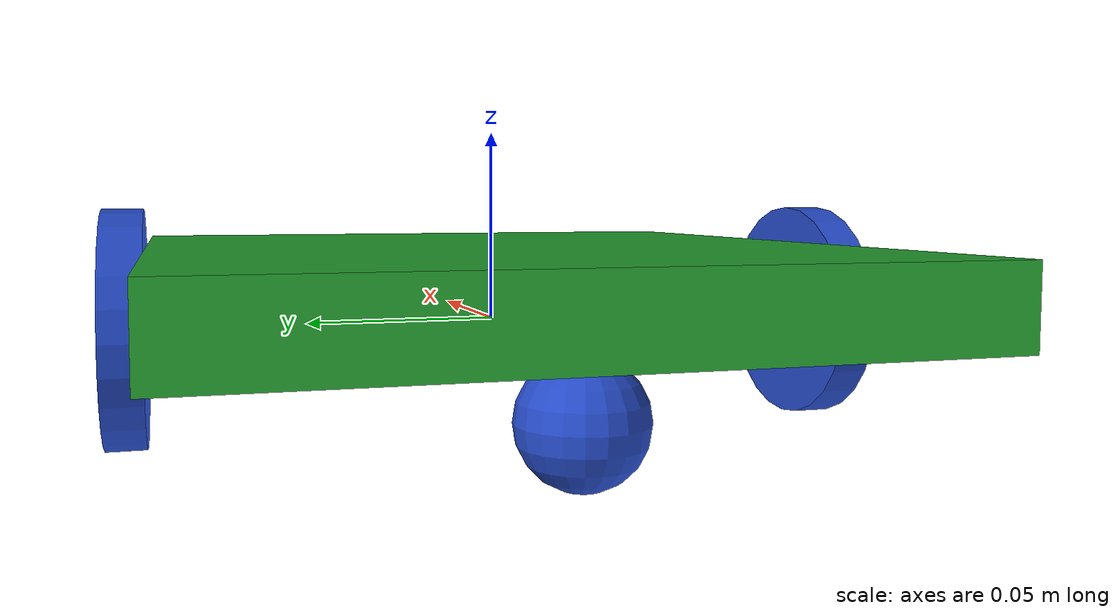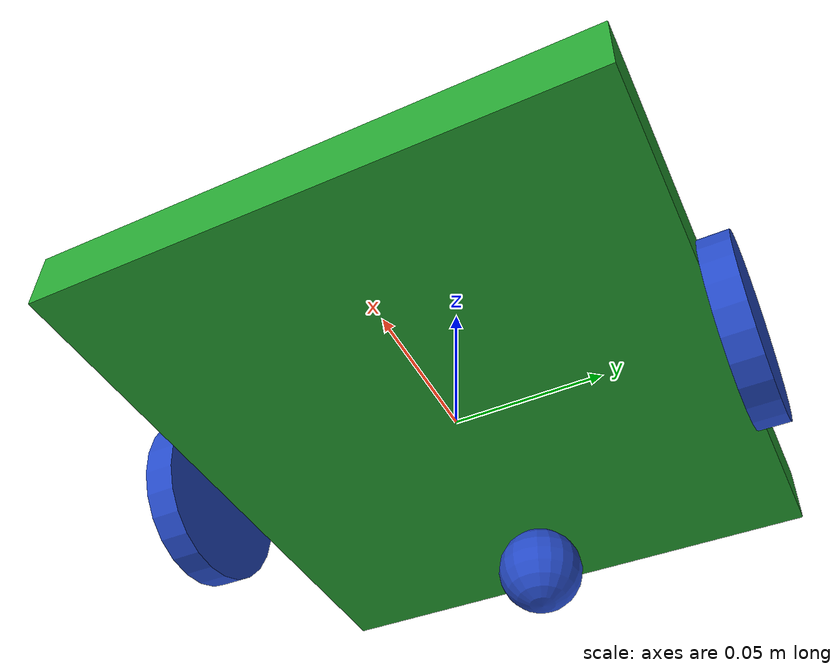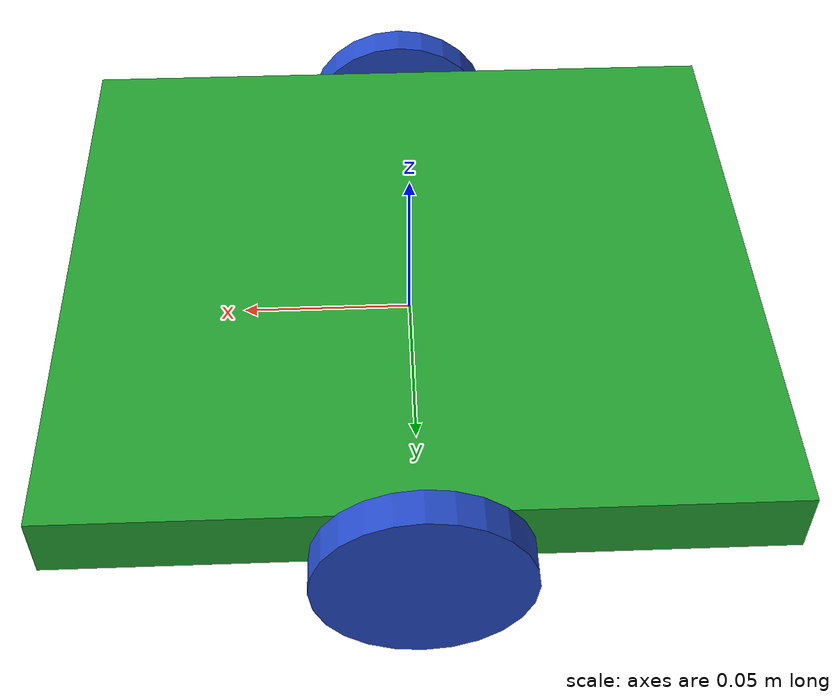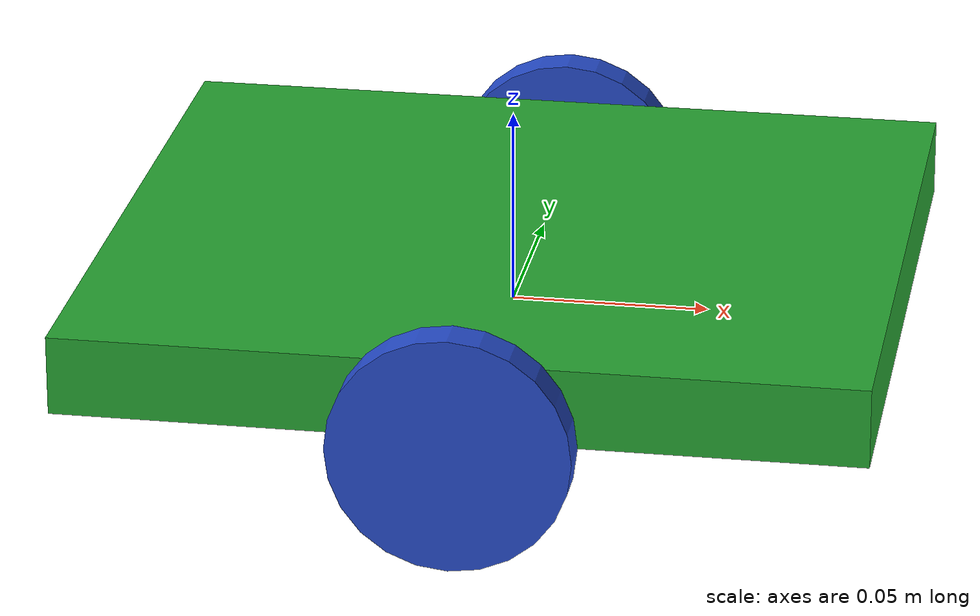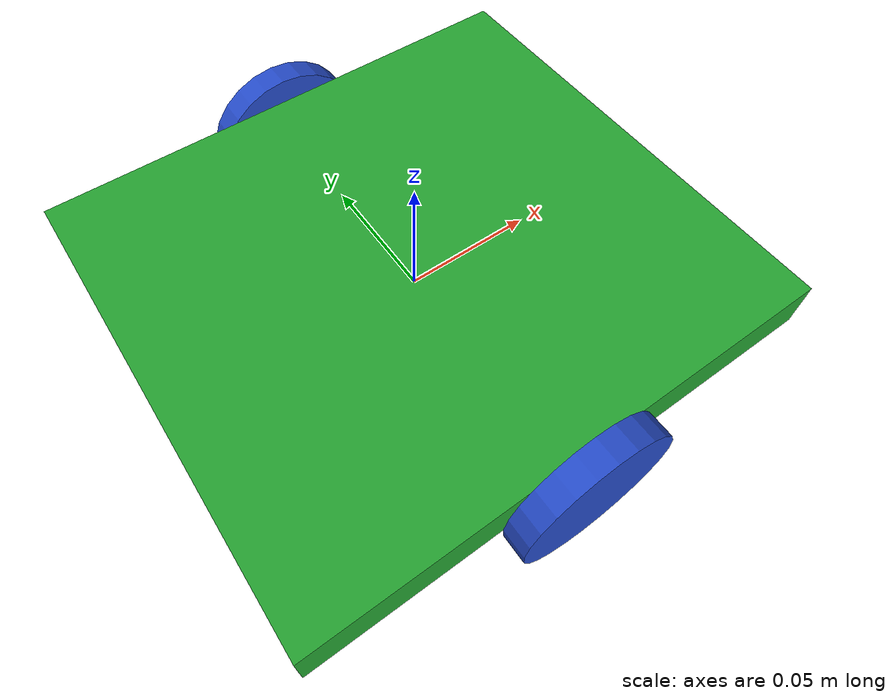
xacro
<?xml version="1.0"?>
<robot xmlns:xacro="http://www.ros.org/wiki/xacro">

    <!-- Root -->

    <link name="base_link">
    </link>

    <!-- Base footprint -->

    <joint name="base_footprint_joint" type="fixed">
        <parent link="base_link" />
        <child link="base_footprint_link" />
        <origin xyz="0 0 0" rpy="0 0 0" />
    </joint>

    <link name="base_footprint_link">
    </link>

    <!-- Base -->

    <joint name="platform_joint" type="fixed">
        <parent link="base_link" />
        <child link="platform_link" />
        <origin xyz="0 0 0" />
    </joint>

    <link name="platform_link">
        <visual>
            <origin xyz="0 0 0.01" rpy="0 0 0" />
            <geometry>
                <box size="0.2 0.18 0.02" />
            </geometry>
            <material name="green" />
        </visual>
        <collision>
            <origin xyz="0 0 0.01" rpy="0 0 0" />
            <geometry>
                <box size="0.2 0.18 0.02" />
            </geometry>
        </collision>
        <xacro:inertial_box mass="0.5" x="0.2" y="0.18" z="0.02">
            <origin xyz="0 0 0.01" rpy="0 0 0" />
        </xacro:inertial_box>
    </link>

<!-- Left wheel-->

    <xacro:property name="wheel_length" value="0.01" />
    <xacro:property name="wheel_radius" value="0.03" />
    <xacro:property name="wheel_damping" value="0.0002" />
    <xacro:property name="wheel_friction" value="0.005" />

    <joint name="wheelL_joint" type="continuous">
        <origin xyz="0 0.095 0" rpy="-${pi/2} 0 0" />
        <parent link="base_link" />
        <child link="wheelL_link" />
        <axis xyz="0 0 1"/>
        <dynamics damping="${wheel_damping}" friction="${wheel_friction}" />
    </joint>

    <link name="wheelL_link">
        <visual>
            <origin xyz="0 0 0" rpy="0 0 0" />
            <geometry>
                <cylinder length="${wheel_length}" radius="${wheel_radius}" />
            </geometry>
            <material name="blue" />
        </visual>
        <collision>
            <origin xyz="0 0 0" rpy="0 0 0" />
            <geometry>
                <cylinder length="${wheel_length}" radius="${wheel_radius}" />
            </geometry>
        </collision>
        <xacro:inertial_cylinder mass="0.1" length="${wheel_length}" radius="${wheel_radius}">
            <origin xyz="0 0 0" rpy="0 0 0" />
        </xacro:inertial_cylinder>
    </link>

<!-- Right wheel -->

    <joint name="wheelR_joint" type="continuous">
        <origin xyz="0 -0.095 0" rpy="${pi/2} 0 0" />
        <parent link="base_link" />
        <child link="wheelR_link" />
        <axis xyz="0 0 -1" />
       <dynamics damping="${wheel_damping}" friction="${wheel_friction}" />
    </joint>

    <link name="wheelR_link">
        <visual>
            <origin xyz="0 0 0" rpy="0 0 0" />
            <geometry>
                <cylinder length="${wheel_length}" radius="${wheel_radius}" />
            </geometry>
            <material name="blue" />
        </visual>
        <collision>
            <origin xyz="0 0 0" rpy="0 0 0" />
            <geometry>
                <cylinder length="${wheel_length}" radius="${wheel_radius}" />
            </geometry>
        </collision>
        <xacro:inertial_cylinder mass="0.1" length="${wheel_length}" radius="${wheel_radius}">
            <origin xyz="0 0 0" rpy="0 0 0" />
        </xacro:inertial_cylinder>
    </link>

<!-- Back wheel -->

    <xacro:property name="back_wheel_radius" value="0.015" />

    <joint name="back_wheel_joint" type="continuous">
        <origin xyz="-0.07 0 -0.015" rpy="0 0 0"/>
        <parent link="base_link"/>
        <child link="back_wheel_link"/>
        <axis xyz="0 1 1"/>
        <dynamics damping="${wheel_damping/2}" friction="${wheel_friction/2}" />
    </joint>

    <link name="back_wheel_link">
        <visual>
            <origin xyz="0 0 0" rpy="0 0 0" />
            <geometry>
                <sphere radius="${back_wheel_radius}" />
            </geometry>
            <material name="blue" />
        </visual>
        <collision>
            <origin xyz="0 0 0" rpy="0 0 0" />
            <geometry>
                <sphere radius="${back_wheel_radius}" />
            </geometry>
        </collision>
        <xacro:inertial_sphere mass="0.05" radius="${back_wheel_radius}">
            <origin xyz="0 0 0" rpy="0 0 0" />
        </xacro:inertial_sphere>
    </link>
</robot>
